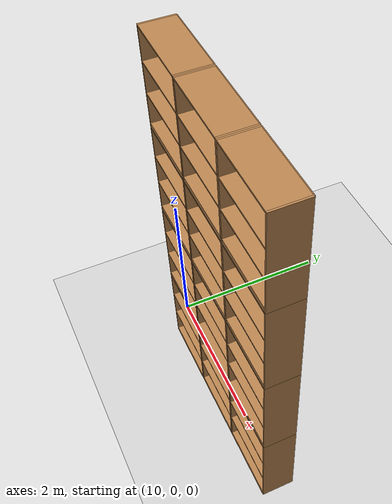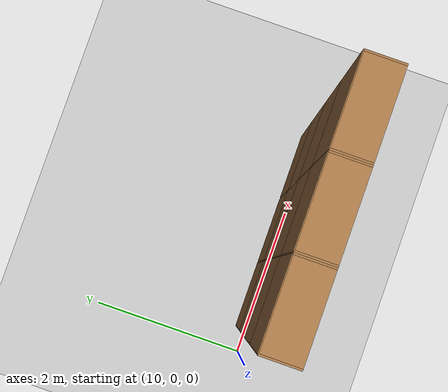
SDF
<sdf version="1.6">
 <world name="default">
  <model name="ground_plane">
   <static>1</static>
   <link name="link">
    <collision name="collision">
     <geometry><plane><normal>0 0 1</normal><size>100 100</size></plane></geometry>
     <surface>
      <contact><collide_bitmask>65535</collide_bitmask></contact>
      <friction><ode><mu>100</mu><mu2>50</mu2></ode></friction>
     </surface>
    </collision>
    <visual name="visual">
     <cast_shadows>0</cast_shadows>
     <geometry><plane><normal>0 0 1</normal><size>100 100</size></plane></geometry>
     <material>
      <script><uri>file://media/materials/scripts/gazebo.material</uri><name>Gazebo/Grey</name></script>
     </material>
    </visual>
   </link>
  </model>
  <model name="shelf2.0_clone_0_clone_clone_0">
   <model name="shelf1.0">
    <model name="bookshelf">
     <static>1</static>
     <link name="link">
      <inertial><mass>1</mass></inertial>
      <collision name="back">
       <pose>0 0.005 0.6 0 -0 0</pose>
       <geometry><box><size>0.9 0.01 1.2</size></box></geometry>
      </collision>
      <visual name="visual1">
       <pose>0 0.005 0.6 0 -0 0</pose>
       <geometry><box><size>0.9 0.01 1.2</size></box></geometry>
       <material>
        <script><uri>file://media/materials/scripts/gazebo.material</uri><name>Gazebo/Wood</name></script>
       </material>
      </visual>
      <collision name="left_side">
       <pose>0.45 -0.195 0.6 0 -0 0</pose>
       <geometry><box><size>0.02 0.4 1.2</size></box></geometry>
      </collision>
      <visual name="visual2">
       <pose>0.45 -0.195 0.6 0 -0 0</pose>
       <geometry><box><size>0.02 0.4 1.2</size></box></geometry>
       <material>
        <script><uri>file://media/materials/scripts/gazebo.material</uri><name>Gazebo/Wood</name></script>
       </material>
      </visual>
      <collision name="right_side">
       <pose>-0.45 -0.195 0.6 0 -0 0</pose>
       <geometry><box><size>0.02 0.4 1.2</size></box></geometry>
      </collision>
      <visual name="visual3">
       <pose>-0.45 -0.195 0.6 0 -0 0</pose>
       <geometry><box><size>0.02 0.4 1.2</size></box></geometry>
       <material>
        <script><uri>file://media/materials/scripts/gazebo.material</uri><name>Gazebo/Wood</name></script>
       </material>
      </visual>
      <collision name="bottom">
       <pose>0 -0.195 0.03 0 -0 0</pose>
       <geometry><box><size>0.88 0.4 0.06</size></box></geometry>
      </collision>
      <visual name="visual4">
       <pose>0 -0.195 0.03 0 -0 0</pose>
       <geometry><box><size>0.88 0.4 0.06</size></box></geometry>
       <material>
        <script><uri>file://media/materials/scripts/gazebo.material</uri><name>Gazebo/Wood</name></script>
       </material>
      </visual>
      <collision name="top">
       <pose>0 -0.195 1.19 0 -0 0</pose>
       <geometry><box><size>0.88 0.4 0.02</size></box></geometry>
      </collision>
      <visual name="visual5">
       <pose>0 -0.195 1.19 0 -0 0</pose>
       <geometry><box><size>0.88 0.4 0.02</size></box></geometry>
       <material>
        <script><uri>file://media/materials/scripts/gazebo.material</uri><name>Gazebo/Wood</name></script>
       </material>
      </visual>
      <collision name="low_shelf">
       <pose>0 -0.195 0.43 0 -0 0</pose>
       <geometry><box><size>0.88 0.4 0.02</size></box></geometry>
      </collision>
      <visual name="visual6">
       <pose>0 -0.195 0.43 0 -0 0</pose>
       <geometry><box><size>0.88 0.4 0.02</size></box></geometry>
       <material>
        <script><uri>file://media/materials/scripts/gazebo.material</uri><name>Gazebo/Wood</name></script>
       </material>
      </visual>
      <collision name="high_shelf">
       <pose>0 -0.195 0.8 0 -0 0</pose>
       <geometry><box><size>0.88 0.4 0.02</size></box></geometry>
      </collision>
      <visual name="visual7">
       <pose>0 -0.195 0.8 0 -0 0</pose>
       <geometry><box><size>0.88 0.4 0.02</size></box></geometry>
       <material>
        <script><uri>file://media/materials/scripts/gazebo.material</uri><name>Gazebo/Wood</name></script>
       </material>
      </visual>
     </link>
     <pose>1e-06 0 -1.8 0 -0 0</pose>
    </model>
    <model name="bookshelf_clone">
     <static>1</static>
     <link name="link">
      <inertial><mass>1</mass></inertial>
      <collision name="back">
       <pose>0 0.005 0.6 0 -0 0</pose>
       <geometry><box><size>0.9 0.01 1.2</size></box></geometry>
      </collision>
      <visual name="visual1">
       <pose>0 0.005 0.6 0 -0 0</pose>
       <geometry><box><size>0.9 0.01 1.2</size></box></geometry>
       <material>
        <script><uri>file://media/materials/scripts/gazebo.material</uri><name>Gazebo/Wood</name></script>
       </material>
      </visual>
      <collision name="left_side">
       <pose>0.45 -0.195 0.6 0 -0 0</pose>
       <geometry><box><size>0.02 0.4 1.2</size></box></geometry>
      </collision>
      <visual name="visual2">
       <pose>0.45 -0.195 0.6 0 -0 0</pose>
       <geometry><box><size>0.02 0.4 1.2</size></box></geometry>
       <material>
        <script><uri>file://media/materials/scripts/gazebo.material</uri><name>Gazebo/Wood</name></script>
       </material>
      </visual>
      <collision name="right_side">
       <pose>-0.45 -0.195 0.6 0 -0 0</pose>
       <geometry><box><size>0.02 0.4 1.2</size></box></geometry>
      </collision>
      <visual name="visual3">
       <pose>-0.45 -0.195 0.6 0 -0 0</pose>
       <geometry><box><size>0.02 0.4 1.2</size></box></geometry>
       <material>
        <script><uri>file://media/materials/scripts/gazebo.material</uri><name>Gazebo/Wood</name></script>
       </material>
      </visual>
      <collision name="bottom">
       <pose>0 -0.195 0.03 0 -0 0</pose>
       <geometry><box><size>0.88 0.4 0.06</size></box></geometry>
      </collision>
      <visual name="visual4">
       <pose>0 -0.195 0.03 0 -0 0</pose>
       <geometry><box><size>0.88 0.4 0.06</size></box></geometry>
       <material>
        <script><uri>file://media/materials/scripts/gazebo.material</uri><name>Gazebo/Wood</name></script>
       </material>
      </visual>
      <collision name="top">
       <pose>0 -0.195 1.19 0 -0 0</pose>
       <geometry><box><size>0.88 0.4 0.02</size></box></geometry>
      </collision>
      <visual name="visual5">
       <pose>0 -0.195 1.19 0 -0 0</pose>
       <geometry><box><size>0.88 0.4 0.02</size></box></geometry>
       <material>
        <script><uri>file://media/materials/scripts/gazebo.material</uri><name>Gazebo/Wood</name></script>
       </material>
      </visual>
      <collision name="low_shelf">
       <pose>0 -0.195 0.43 0 -0 0</pose>
       <geometry><box><size>0.88 0.4 0.02</size></box></geometry>
      </collision>
      <visual name="visual6">
       <pose>0 -0.195 0.43 0 -0 0</pose>
       <geometry><box><size>0.88 0.4 0.02</size></box></geometry>
       <material>
        <script><uri>file://media/materials/scripts/gazebo.material</uri><name>Gazebo/Wood</name></script>
       </material>
      </visual>
      <collision name="high_shelf">
       <pose>0 -0.195 0.8 0 -0 0</pose>
       <geometry><box><size>0.88 0.4 0.02</size></box></geometry>
      </collision>
      <visual name="visual7">
       <pose>0 -0.195 0.8 0 -0 0</pose>
       <geometry><box><size>0.88 0.4 0.02</size></box></geometry>
       <material>
        <script><uri>file://media/materials/scripts/gazebo.material</uri><name>Gazebo/Wood</name></script>
       </material>
      </visual>
     </link>
     <pose>1e-06 0 -0.600002 0 -0 0</pose>
    </model>
    <model name="bookshelf_clone_0">
     <static>1</static>
     <link name="link">
      <inertial><mass>1</mass></inertial>
      <collision name="back">
       <pose>0 0.005 0.6 0 -0 0</pose>
       <geometry><box><size>0.9 0.01 1.2</size></box></geometry>
      </collision>
      <visual name="visual1">
       <pose>0 0.005 0.6 0 -0 0</pose>
       <geometry><box><size>0.9 0.01 1.2</size></box></geometry>
       <material>
        <script><uri>file://media/materials/scripts/gazebo.material</uri><name>Gazebo/Wood</name></script>
       </material>
      </visual>
      <collision name="left_side">
       <pose>0.45 -0.195 0.6 0 -0 0</pose>
       <geometry><box><size>0.02 0.4 1.2</size></box></geometry>
      </collision>
      <visual name="visual2">
       <pose>0.45 -0.195 0.6 0 -0 0</pose>
       <geometry><box><size>0.02 0.4 1.2</size></box></geometry>
       <material>
        <script><uri>file://media/materials/scripts/gazebo.material</uri><name>Gazebo/Wood</name></script>
       </material>
      </visual>
      <collision name="right_side">
       <pose>-0.45 -0.195 0.6 0 -0 0</pose>
       <geometry><box><size>0.02 0.4 1.2</size></box></geometry>
      </collision>
      <visual name="visual3">
       <pose>-0.45 -0.195 0.6 0 -0 0</pose>
       <geometry><box><size>0.02 0.4 1.2</size></box></geometry>
       <material>
        <script><uri>file://media/materials/scripts/gazebo.material</uri><name>Gazebo/Wood</name></script>
       </material>
      </visual>
      <collision name="bottom">
       <pose>0 -0.195 0.03 0 -0 0</pose>
       <geometry><box><size>0.88 0.4 0.06</size></box></geometry>
      </collision>
      <visual name="visual4">
       <pose>0 -0.195 0.03 0 -0 0</pose>
       <geometry><box><size>0.88 0.4 0.06</size></box></geometry>
       <material>
        <script><uri>file://media/materials/scripts/gazebo.material</uri><name>Gazebo/Wood</name></script>
       </material>
      </visual>
      <collision name="top">
       <pose>0 -0.195 1.19 0 -0 0</pose>
       <geometry><box><size>0.88 0.4 0.02</size></box></geometry>
      </collision>
      <visual name="visual5">
       <pose>0 -0.195 1.19 0 -0 0</pose>
       <geometry><box><size>0.88 0.4 0.02</size></box></geometry>
       <material>
        <script><uri>file://media/materials/scripts/gazebo.material</uri><name>Gazebo/Wood</name></script>
       </material>
      </visual>
      <collision name="low_shelf">
       <pose>0 -0.195 0.43 0 -0 0</pose>
       <geometry><box><size>0.88 0.4 0.02</size></box></geometry>
      </collision>
      <visual name="visual6">
       <pose>0 -0.195 0.43 0 -0 0</pose>
       <geometry><box><size>0.88 0.4 0.02</size></box></geometry>
       <material>
        <script><uri>file://media/materials/scripts/gazebo.material</uri><name>Gazebo/Wood</name></script>
       </material>
      </visual>
      <collision name="high_shelf">
       <pose>0 -0.195 0.8 0 -0 0</pose>
       <geometry><box><size>0.88 0.4 0.02</size></box></geometry>
      </collision>
      <visual name="visual7">
       <pose>0 -0.195 0.8 0 -0 0</pose>
       <geometry><box><size>0.88 0.4 0.02</size></box></geometry>
       <material>
        <script><uri>file://media/materials/scripts/gazebo.material</uri><name>Gazebo/Wood</name></script>
       </material>
      </visual>
     </link>
     <pose>1e-06 0 0.599998 0 -0 0</pose>
    </model>
    <model name="bookshelf_clone_0_clone">
     <static>1</static>
     <link name="link">
      <inertial><mass>1</mass></inertial>
      <collision name="back">
       <pose>0 0.005 0.6 0 -0 0</pose>
       <geometry><box><size>0.9 0.01 1.2</size></box></geometry>
      </collision>
      <visual name="visual1">
       <pose>0 0.005 0.6 0 -0 0</pose>
       <geometry><box><size>0.9 0.01 1.2</size></box></geometry>
       <material>
        <script><uri>file://media/materials/scripts/gazebo.material</uri><name>Gazebo/Wood</name></script>
       </material>
      </visual>
      <collision name="left_side">
       <pose>0.45 -0.195 0.6 0 -0 0</pose>
       <geometry><box><size>0.02 0.4 1.2</size></box></geometry>
      </collision>
      <visual name="visual2">
       <pose>0.45 -0.195 0.6 0 -0 0</pose>
       <geometry><box><size>0.02 0.4 1.2</size></box></geometry>
       <material>
        <script><uri>file://media/materials/scripts/gazebo.material</uri><name>Gazebo/Wood</name></script>
       </material>
      </visual>
      <collision name="right_side">
       <pose>-0.45 -0.195 0.6 0 -0 0</pose>
       <geometry><box><size>0.02 0.4 1.2</size></box></geometry>
      </collision>
      <visual name="visual3">
       <pose>-0.45 -0.195 0.6 0 -0 0</pose>
       <geometry><box><size>0.02 0.4 1.2</size></box></geometry>
       <material>
        <script><uri>file://media/materials/scripts/gazebo.material</uri><name>Gazebo/Wood</name></script>
       </material>
      </visual>
      <collision name="bottom">
       <pose>0 -0.195 0.03 0 -0 0</pose>
       <geometry><box><size>0.88 0.4 0.06</size></box></geometry>
      </collision>
      <visual name="visual4">
       <pose>0 -0.195 0.03 0 -0 0</pose>
       <geometry><box><size>0.88 0.4 0.06</size></box></geometry>
       <material>
        <script><uri>file://media/materials/scripts/gazebo.material</uri><name>Gazebo/Wood</name></script>
       </material>
      </visual>
      <collision name="top">
       <pose>0 -0.195 1.19 0 -0 0</pose>
       <geometry><box><size>0.88 0.4 0.02</size></box></geometry>
      </collision>
      <visual name="visual5">
       <pose>0 -0.195 1.19 0 -0 0</pose>
       <geometry><box><size>0.88 0.4 0.02</size></box></geometry>
       <material>
        <script><uri>file://media/materials/scripts/gazebo.material</uri><name>Gazebo/Wood</name></script>
       </material>
      </visual>
      <collision name="low_shelf">
       <pose>0 -0.195 0.43 0 -0 0</pose>
       <geometry><box><size>0.88 0.4 0.02</size></box></geometry>
      </collision>
      <visual name="visual6">
       <pose>0 -0.195 0.43 0 -0 0</pose>
       <geometry><box><size>0.88 0.4 0.02</size></box></geometry>
       <material>
        <script><uri>file://media/materials/scripts/gazebo.material</uri><name>Gazebo/Wood</name></script>
       </material>
      </visual>
      <collision name="high_shelf">
       <pose>0 -0.195 0.8 0 -0 0</pose>
       <geometry><box><size>0.88 0.4 0.02</size></box></geometry>
      </collision>
      <visual name="visual7">
       <pose>0 -0.195 0.8 0 -0 0</pose>
       <geometry><box><size>0.88 0.4 0.02</size></box></geometry>
       <material>
        <script><uri>file://media/materials/scripts/gazebo.material</uri><name>Gazebo/Wood</name></script>
       </material>
      </visual>
     </link>
     <pose>1e-06 0 1.8 0 -0 0</pose>
    </model>
    <joint name="link_JOINT_3" type="fixed">
     <parent>bookshelf::link</parent>
     <child>bookshelf_clone::link</child>
     <physics>
      <ode><limit><cfm>0</cfm><erp>0.2</erp></limit><suspension><cfm>0</cfm><erp>0.2</erp></suspension></ode>
     </physics>
    </joint>
    <joint name="link_JOINT_4" type="fixed">
     <parent>bookshelf::link</parent>
     <child>bookshelf_clone_0::link</child>
     <physics>
      <ode><limit><cfm>0</cfm><erp>0.2</erp></limit><suspension><cfm>0</cfm><erp>0.2</erp></suspension></ode>
     </physics>
    </joint>
    <joint name="link_JOINT_5" type="fixed">
     <parent>bookshelf::link</parent>
     <child>bookshelf_clone_0_clone::link</child>
     <physics>
      <ode><limit><cfm>0</cfm><erp>0.2</erp></limit><suspension><cfm>0</cfm><erp>0.2</erp></suspension></ode>
     </physics>
    </joint>
    <static>0</static>
    <pose>-0.920027 0 0 0 -0 0</pose>
   </model>
   <model name="shelf1.0_clone">
    <model name="bookshelf">
     <static>1</static>
     <link name="link">
      <inertial><mass>1</mass></inertial>
      <collision name="back">
       <pose>0 0.005 0.6 0 -0 0</pose>
       <geometry><box><size>0.9 0.01 1.2</size></box></geometry>
      </collision>
      <visual name="visual1">
       <pose>0 0.005 0.6 0 -0 0</pose>
       <geometry><box><size>0.9 0.01 1.2</size></box></geometry>
       <material>
        <script><uri>file://media/materials/scripts/gazebo.material</uri><name>Gazebo/Wood</name></script>
       </material>
      </visual>
      <collision name="left_side">
       <pose>0.45 -0.195 0.6 0 -0 0</pose>
       <geometry><box><size>0.02 0.4 1.2</size></box></geometry>
      </collision>
      <visual name="visual2">
       <pose>0.45 -0.195 0.6 0 -0 0</pose>
       <geometry><box><size>0.02 0.4 1.2</size></box></geometry>
       <material>
        <script><uri>file://media/materials/scripts/gazebo.material</uri><name>Gazebo/Wood</name></script>
       </material>
      </visual>
      <collision name="right_side">
       <pose>-0.45 -0.195 0.6 0 -0 0</pose>
       <geometry><box><size>0.02 0.4 1.2</size></box></geometry>
      </collision>
      <visual name="visual3">
       <pose>-0.45 -0.195 0.6 0 -0 0</pose>
       <geometry><box><size>0.02 0.4 1.2</size></box></geometry>
       <material>
        <script><uri>file://media/materials/scripts/gazebo.material</uri><name>Gazebo/Wood</name></script>
       </material>
      </visual>
      <collision name="bottom">
       <pose>0 -0.195 0.03 0 -0 0</pose>
       <geometry><box><size>0.88 0.4 0.06</size></box></geometry>
      </collision>
      <visual name="visual4">
       <pose>0 -0.195 0.03 0 -0 0</pose>
       <geometry><box><size>0.88 0.4 0.06</size></box></geometry>
       <material>
        <script><uri>file://media/materials/scripts/gazebo.material</uri><name>Gazebo/Wood</name></script>
       </material>
      </visual>
      <collision name="top">
       <pose>0 -0.195 1.19 0 -0 0</pose>
       <geometry><box><size>0.88 0.4 0.02</size></box></geometry>
      </collision>
      <visual name="visual5">
       <pose>0 -0.195 1.19 0 -0 0</pose>
       <geometry><box><size>0.88 0.4 0.02</size></box></geometry>
       <material>
        <script><uri>file://media/materials/scripts/gazebo.material</uri><name>Gazebo/Wood</name></script>
       </material>
      </visual>
      <collision name="low_shelf">
       <pose>0 -0.195 0.43 0 -0 0</pose>
       <geometry><box><size>0.88 0.4 0.02</size></box></geometry>
      </collision>
      <visual name="visual6">
       <pose>0 -0.195 0.43 0 -0 0</pose>
       <geometry><box><size>0.88 0.4 0.02</size></box></geometry>
       <material>
        <script><uri>file://media/materials/scripts/gazebo.material</uri><name>Gazebo/Wood</name></script>
       </material>
      </visual>
      <collision name="high_shelf">
       <pose>0 -0.195 0.8 0 -0 0</pose>
       <geometry><box><size>0.88 0.4 0.02</size></box></geometry>
      </collision>
      <visual name="visual7">
       <pose>0 -0.195 0.8 0 -0 0</pose>
       <geometry><box><size>0.88 0.4 0.02</size></box></geometry>
       <material>
        <script><uri>file://media/materials/scripts/gazebo.material</uri><name>Gazebo/Wood</name></script>
       </material>
      </visual>
     </link>
     <pose>1e-06 0 -1.8 0 -0 0</pose>
    </model>
    <model name="bookshelf_clone">
     <static>1</static>
     <link name="link">
      <inertial><mass>1</mass></inertial>
      <collision name="back">
       <pose>0 0.005 0.6 0 -0 0</pose>
       <geometry><box><size>0.9 0.01 1.2</size></box></geometry>
      </collision>
      <visual name="visual1">
       <pose>0 0.005 0.6 0 -0 0</pose>
       <geometry><box><size>0.9 0.01 1.2</size></box></geometry>
       <material>
        <script><uri>file://media/materials/scripts/gazebo.material</uri><name>Gazebo/Wood</name></script>
       </material>
      </visual>
      <collision name="left_side">
       <pose>0.45 -0.195 0.6 0 -0 0</pose>
       <geometry><box><size>0.02 0.4 1.2</size></box></geometry>
      </collision>
      <visual name="visual2">
       <pose>0.45 -0.195 0.6 0 -0 0</pose>
       <geometry><box><size>0.02 0.4 1.2</size></box></geometry>
       <material>
        <script><uri>file://media/materials/scripts/gazebo.material</uri><name>Gazebo/Wood</name></script>
       </material>
      </visual>
      <collision name="right_side">
       <pose>-0.45 -0.195 0.6 0 -0 0</pose>
       <geometry><box><size>0.02 0.4 1.2</size></box></geometry>
      </collision>
      <visual name="visual3">
       <pose>-0.45 -0.195 0.6 0 -0 0</pose>
       <geometry><box><size>0.02 0.4 1.2</size></box></geometry>
       <material>
        <script><uri>file://media/materials/scripts/gazebo.material</uri><name>Gazebo/Wood</name></script>
       </material>
      </visual>
      <collision name="bottom">
       <pose>0 -0.195 0.03 0 -0 0</pose>
       <geometry><box><size>0.88 0.4 0.06</size></box></geometry>
      </collision>
      <visual name="visual4">
       <pose>0 -0.195 0.03 0 -0 0</pose>
       <geometry><box><size>0.88 0.4 0.06</size></box></geometry>
       <material>
        <script><uri>file://media/materials/scripts/gazebo.material</uri><name>Gazebo/Wood</name></script>
       </material>
      </visual>
      <collision name="top">
       <pose>0 -0.195 1.19 0 -0 0</pose>
       <geometry><box><size>0.88 0.4 0.02</size></box></geometry>
      </collision>
      <visual name="visual5">
       <pose>0 -0.195 1.19 0 -0 0</pose>
       <geometry><box><size>0.88 0.4 0.02</size></box></geometry>
       <material>
        <script><uri>file://media/materials/scripts/gazebo.material</uri><name>Gazebo/Wood</name></script>
       </material>
      </visual>
      <collision name="low_shelf">
       <pose>0 -0.195 0.43 0 -0 0</pose>
       <geometry><box><size>0.88 0.4 0.02</size></box></geometry>
      </collision>
      <visual name="visual6">
       <pose>0 -0.195 0.43 0 -0 0</pose>
       <geometry><box><size>0.88 0.4 0.02</size></box></geometry>
       <material>
        <script><uri>file://media/materials/scripts/gazebo.material</uri><name>Gazebo/Wood</name></script>
       </material>
      </visual>
      <collision name="high_shelf">
       <pose>0 -0.195 0.8 0 -0 0</pose>
       <geometry><box><size>0.88 0.4 0.02</size></box></geometry>
      </collision>
      <visual name="visual7">
       <pose>0 -0.195 0.8 0 -0 0</pose>
       <geometry><box><size>0.88 0.4 0.02</size></box></geometry>
       <material>
        <script><uri>file://media/materials/scripts/gazebo.material</uri><name>Gazebo/Wood</name></script>
       </material>
      </visual>
     </link>
     <pose>1e-06 0 -0.600002 0 -0 0</pose>
    </model>
    <model name="bookshelf_clone_0">
     <static>1</static>
     <link name="link">
      <inertial><mass>1</mass></inertial>
      <collision name="back">
       <pose>0 0.005 0.6 0 -0 0</pose>
       <geometry><box><size>0.9 0.01 1.2</size></box></geometry>
      </collision>
      <visual name="visual1">
       <pose>0 0.005 0.6 0 -0 0</pose>
       <geometry><box><size>0.9 0.01 1.2</size></box></geometry>
       <material>
        <script><uri>file://media/materials/scripts/gazebo.material</uri><name>Gazebo/Wood</name></script>
       </material>
      </visual>
      <collision name="left_side">
       <pose>0.45 -0.195 0.6 0 -0 0</pose>
       <geometry><box><size>0.02 0.4 1.2</size></box></geometry>
      </collision>
      <visual name="visual2">
       <pose>0.45 -0.195 0.6 0 -0 0</pose>
       <geometry><box><size>0.02 0.4 1.2</size></box></geometry>
       <material>
        <script><uri>file://media/materials/scripts/gazebo.material</uri><name>Gazebo/Wood</name></script>
       </material>
      </visual>
      <collision name="right_side">
       <pose>-0.45 -0.195 0.6 0 -0 0</pose>
       <geometry><box><size>0.02 0.4 1.2</size></box></geometry>
      </collision>
      <visual name="visual3">
       <pose>-0.45 -0.195 0.6 0 -0 0</pose>
       <geometry><box><size>0.02 0.4 1.2</size></box></geometry>
       <material>
        <script><uri>file://media/materials/scripts/gazebo.material</uri><name>Gazebo/Wood</name></script>
       </material>
      </visual>
      <collision name="bottom">
       <pose>0 -0.195 0.03 0 -0 0</pose>
       <geometry><box><size>0.88 0.4 0.06</size></box></geometry>
      </collision>
      <visual name="visual4">
       <pose>0 -0.195 0.03 0 -0 0</pose>
       <geometry><box><size>0.88 0.4 0.06</size></box></geometry>
       <material>
        <script><uri>file://media/materials/scripts/gazebo.material</uri><name>Gazebo/Wood</name></script>
       </material>
      </visual>
      <collision name="top">
       <pose>0 -0.195 1.19 0 -0 0</pose>
       <geometry><box><size>0.88 0.4 0.02</size></box></geometry>
      </collision>
      <visual name="visual5">
       <pose>0 -0.195 1.19 0 -0 0</pose>
       <geometry><box><size>0.88 0.4 0.02</size></box></geometry>
       <material>
        <script><uri>file://media/materials/scripts/gazebo.material</uri><name>Gazebo/Wood</name></script>
       </material>
      </visual>
      <collision name="low_shelf">
       <pose>0 -0.195 0.43 0 -0 0</pose>
       <geometry><box><size>0.88 0.4 0.02</size></box></geometry>
      </collision>
      <visual name="visual6">
       <pose>0 -0.195 0.43 0 -0 0</pose>
       <geometry><box><size>0.88 0.4 0.02</size></box></geometry>
       <material>
        <script><uri>file://media/materials/scripts/gazebo.material</uri><name>Gazebo/Wood</name></script>
       </material>
      </visual>
      <collision name="high_shelf">
       <pose>0 -0.195 0.8 0 -0 0</pose>
       <geometry><box><size>0.88 0.4 0.02</size></box></geometry>
      </collision>
      <visual name="visual7">
       <pose>0 -0.195 0.8 0 -0 0</pose>
       <geometry><box><size>0.88 0.4 0.02</size></box></geometry>
       <material>
        <script><uri>file://media/materials/scripts/gazebo.material</uri><name>Gazebo/Wood</name></script>
       </material>
      </visual>
     </link>
     <pose>1e-06 0 0.599998 0 -0 0</pose>
    </model>
    <model name="bookshelf_clone_0_clone">
     <static>1</static>
     <link name="link">
      <inertial><mass>1</mass></inertial>
      <collision name="back">
       <pose>0 0.005 0.6 0 -0 0</pose>
       <geometry><box><size>0.9 0.01 1.2</size></box></geometry>
      </collision>
      <visual name="visual1">
       <pose>0 0.005 0.6 0 -0 0</pose>
       <geometry><box><size>0.9 0.01 1.2</size></box></geometry>
       <material>
        <script><uri>file://media/materials/scripts/gazebo.material</uri><name>Gazebo/Wood</name></script>
       </material>
      </visual>
      <collision name="left_side">
       <pose>0.45 -0.195 0.6 0 -0 0</pose>
       <geometry><box><size>0.02 0.4 1.2</size></box></geometry>
      </collision>
      <visual name="visual2">
       <pose>0.45 -0.195 0.6 0 -0 0</pose>
       <geometry><box><size>0.02 0.4 1.2</size></box></geometry>
       <material>
        <script><uri>file://media/materials/scripts/gazebo.material</uri><name>Gazebo/Wood</name></script>
       </material>
      </visual>
      <collision name="right_side">
       <pose>-0.45 -0.195 0.6 0 -0 0</pose>
       <geometry><box><size>0.02 0.4 1.2</size></box></geometry>
      </collision>
      <visual name="visual3">
       <pose>-0.45 -0.195 0.6 0 -0 0</pose>
       <geometry><box><size>0.02 0.4 1.2</size></box></geometry>
       <material>
        <script><uri>file://media/materials/scripts/gazebo.material</uri><name>Gazebo/Wood</name></script>
       </material>
      </visual>
      <collision name="bottom">
       <pose>0 -0.195 0.03 0 -0 0</pose>
       <geometry><box><size>0.88 0.4 0.06</size></box></geometry>
      </collision>
      <visual name="visual4">
       <pose>0 -0.195 0.03 0 -0 0</pose>
       <geometry><box><size>0.88 0.4 0.06</size></box></geometry>
       <material>
        <script><uri>file://media/materials/scripts/gazebo.material</uri><name>Gazebo/Wood</name></script>
       </material>
      </visual>
      <collision name="top">
       <pose>0 -0.195 1.19 0 -0 0</pose>
       <geometry><box><size>0.88 0.4 0.02</size></box></geometry>
      </collision>
      <visual name="visual5">
       <pose>0 -0.195 1.19 0 -0 0</pose>
       <geometry><box><size>0.88 0.4 0.02</size></box></geometry>
       <material>
        <script><uri>file://media/materials/scripts/gazebo.material</uri><name>Gazebo/Wood</name></script>
       </material>
      </visual>
      <collision name="low_shelf">
       <pose>0 -0.195 0.43 0 -0 0</pose>
       <geometry><box><size>0.88 0.4 0.02</size></box></geometry>
      </collision>
      <visual name="visual6">
       <pose>0 -0.195 0.43 0 -0 0</pose>
       <geometry><box><size>0.88 0.4 0.02</size></box></geometry>
       <material>
        <script><uri>file://media/materials/scripts/gazebo.material</uri><name>Gazebo/Wood</name></script>
       </material>
      </visual>
      <collision name="high_shelf">
       <pose>0 -0.195 0.8 0 -0 0</pose>
       <geometry><box><size>0.88 0.4 0.02</size></box></geometry>
      </collision>
      <visual name="visual7">
       <pose>0 -0.195 0.8 0 -0 0</pose>
       <geometry><box><size>0.88 0.4 0.02</size></box></geometry>
       <material>
        <script><uri>file://media/materials/scripts/gazebo.material</uri><name>Gazebo/Wood</name></script>
       </material>
      </visual>
     </link>
     <pose>1e-06 0 1.8 0 -0 0</pose>
    </model>
    <joint name="link_JOINT_3" type="fixed">
     <parent>bookshelf::link</parent>
     <child>bookshelf_clone::link</child>
     <physics>
      <ode><limit><cfm>0</cfm><erp>0.2</erp></limit><suspension><cfm>0</cfm><erp>0.2</erp></suspension></ode>
     </physics>
    </joint>
    <joint name="link_JOINT_4" type="fixed">
     <parent>bookshelf::link</parent>
     <child>bookshelf_clone_0::link</child>
     <physics>
      <ode><limit><cfm>0</cfm><erp>0.2</erp></limit><suspension><cfm>0</cfm><erp>0.2</erp></suspension></ode>
     </physics>
    </joint>
    <joint name="link_JOINT_5" type="fixed">
     <parent>bookshelf::link</parent>
     <child>bookshelf_clone_0_clone::link</child>
     <physics>
      <ode><limit><cfm>0</cfm><erp>0.2</erp></limit><suspension><cfm>0</cfm><erp>0.2</erp></suspension></ode>
     </physics>
    </joint>
    <static>0</static>
    <pose>-2.5e-05 0 0 0 -0 0</pose>
   </model>
   <model name="shelf1.0_clone_0">
    <model name="bookshelf">
     <static>1</static>
     <link name="link">
      <inertial><mass>1</mass></inertial>
      <collision name="back">
       <pose>0 0.005 0.6 0 -0 0</pose>
       <geometry><box><size>0.9 0.01 1.2</size></box></geometry>
      </collision>
      <visual name="visual1">
       <pose>0 0.005 0.6 0 -0 0</pose>
       <geometry><box><size>0.9 0.01 1.2</size></box></geometry>
       <material>
        <script><uri>file://media/materials/scripts/gazebo.material</uri><name>Gazebo/Wood</name></script>
       </material>
      </visual>
      <collision name="left_side">
       <pose>0.45 -0.195 0.6 0 -0 0</pose>
       <geometry><box><size>0.02 0.4 1.2</size></box></geometry>
      </collision>
      <visual name="visual2">
       <pose>0.45 -0.195 0.6 0 -0 0</pose>
       <geometry><box><size>0.02 0.4 1.2</size></box></geometry>
       <material>
        <script><uri>file://media/materials/scripts/gazebo.material</uri><name>Gazebo/Wood</name></script>
       </material>
      </visual>
      <collision name="right_side">
       <pose>-0.45 -0.195 0.6 0 -0 0</pose>
       <geometry><box><size>0.02 0.4 1.2</size></box></geometry>
      </collision>
      <visual name="visual3">
       <pose>-0.45 -0.195 0.6 0 -0 0</pose>
       <geometry><box><size>0.02 0.4 1.2</size></box></geometry>
       <material>
        <script><uri>file://media/materials/scripts/gazebo.material</uri><name>Gazebo/Wood</name></script>
       </material>
      </visual>
      <collision name="bottom">
       <pose>0 -0.195 0.03 0 -0 0</pose>
       <geometry><box><size>0.88 0.4 0.06</size></box></geometry>
      </collision>
      <visual name="visual4">
       <pose>0 -0.195 0.03 0 -0 0</pose>
       <geometry><box><size>0.88 0.4 0.06</size></box></geometry>
       <material>
        <script><uri>file://media/materials/scripts/gazebo.material</uri><name>Gazebo/Wood</name></script>
       </material>
      </visual>
      <collision name="top">
       <pose>0 -0.195 1.19 0 -0 0</pose>
       <geometry><box><size>0.88 0.4 0.02</size></box></geometry>
      </collision>
      <visual name="visual5">
       <pose>0 -0.195 1.19 0 -0 0</pose>
       <geometry><box><size>0.88 0.4 0.02</size></box></geometry>
       <material>
        <script><uri>file://media/materials/scripts/gazebo.material</uri><name>Gazebo/Wood</name></script>
       </material>
      </visual>
      <collision name="low_shelf">
       <pose>0 -0.195 0.43 0 -0 0</pose>
       <geometry><box><size>0.88 0.4 0.02</size></box></geometry>
      </collision>
      <visual name="visual6">
       <pose>0 -0.195 0.43 0 -0 0</pose>
       <geometry><box><size>0.88 0.4 0.02</size></box></geometry>
       <material>
        <script><uri>file://media/materials/scripts/gazebo.material</uri><name>Gazebo/Wood</name></script>
       </material>
      </visual>
      <collision name="high_shelf">
       <pose>0 -0.195 0.8 0 -0 0</pose>
       <geometry><box><size>0.88 0.4 0.02</size></box></geometry>
      </collision>
      <visual name="visual7">
       <pose>0 -0.195 0.8 0 -0 0</pose>
       <geometry><box><size>0.88 0.4 0.02</size></box></geometry>
       <material>
        <script><uri>file://media/materials/scripts/gazebo.material</uri><name>Gazebo/Wood</name></script>
       </material>
      </visual>
     </link>
     <pose>1e-06 0 -1.8 0 -0 0</pose>
    </model>
    <model name="bookshelf_clone">
     <static>1</static>
     <link name="link">
      <inertial><mass>1</mass></inertial>
      <collision name="back">
       <pose>0 0.005 0.6 0 -0 0</pose>
       <geometry><box><size>0.9 0.01 1.2</size></box></geometry>
      </collision>
      <visual name="visual1">
       <pose>0 0.005 0.6 0 -0 0</pose>
       <geometry><box><size>0.9 0.01 1.2</size></box></geometry>
       <material>
        <script><uri>file://media/materials/scripts/gazebo.material</uri><name>Gazebo/Wood</name></script>
       </material>
      </visual>
      <collision name="left_side">
       <pose>0.45 -0.195 0.6 0 -0 0</pose>
       <geometry><box><size>0.02 0.4 1.2</size></box></geometry>
      </collision>
      <visual name="visual2">
       <pose>0.45 -0.195 0.6 0 -0 0</pose>
       <geometry><box><size>0.02 0.4 1.2</size></box></geometry>
       <material>
        <script><uri>file://media/materials/scripts/gazebo.material</uri><name>Gazebo/Wood</name></script>
       </material>
      </visual>
      <collision name="right_side">
       <pose>-0.45 -0.195 0.6 0 -0 0</pose>
       <geometry><box><size>0.02 0.4 1.2</size></box></geometry>
      </collision>
      <visual name="visual3">
       <pose>-0.45 -0.195 0.6 0 -0 0</pose>
       <geometry><box><size>0.02 0.4 1.2</size></box></geometry>
       <material>
        <script><uri>file://media/materials/scripts/gazebo.material</uri><name>Gazebo/Wood</name></script>
       </material>
      </visual>
      <collision name="bottom">
       <pose>0 -0.195 0.03 0 -0 0</pose>
       <geometry><box><size>0.88 0.4 0.06</size></box></geometry>
      </collision>
      <visual name="visual4">
       <pose>0 -0.195 0.03 0 -0 0</pose>
       <geometry><box><size>0.88 0.4 0.06</size></box></geometry>
       <material>
        <script><uri>file://media/materials/scripts/gazebo.material</uri><name>Gazebo/Wood</name></script>
       </material>
      </visual>
      <collision name="top">
       <pose>0 -0.195 1.19 0 -0 0</pose>
       <geometry><box><size>0.88 0.4 0.02</size></box></geometry>
      </collision>
      <visual name="visual5">
       <pose>0 -0.195 1.19 0 -0 0</pose>
       <geometry><box><size>0.88 0.4 0.02</size></box></geometry>
       <material>
        <script><uri>file://media/materials/scripts/gazebo.material</uri><name>Gazebo/Wood</name></script>
       </material>
      </visual>
      <collision name="low_shelf">
       <pose>0 -0.195 0.43 0 -0 0</pose>
       <geometry><box><size>0.88 0.4 0.02</size></box></geometry>
      </collision>
      <visual name="visual6">
       <pose>0 -0.195 0.43 0 -0 0</pose>
       <geometry><box><size>0.88 0.4 0.02</size></box></geometry>
       <material>
        <script><uri>file://media/materials/scripts/gazebo.material</uri><name>Gazebo/Wood</name></script>
       </material>
      </visual>
      <collision name="high_shelf">
       <pose>0 -0.195 0.8 0 -0 0</pose>
       <geometry><box><size>0.88 0.4 0.02</size></box></geometry>
      </collision>
      <visual name="visual7">
       <pose>0 -0.195 0.8 0 -0 0</pose>
       <geometry><box><size>0.88 0.4 0.02</size></box></geometry>
       <material>
        <script><uri>file://media/materials/scripts/gazebo.material</uri><name>Gazebo/Wood</name></script>
       </material>
      </visual>
     </link>
     <pose>1e-06 0 -0.600002 0 -0 0</pose>
    </model>
    <model name="bookshelf_clone_0">
     <static>1</static>
     <link name="link">
      <inertial><mass>1</mass></inertial>
      <collision name="back">
       <pose>0 0.005 0.6 0 -0 0</pose>
       <geometry><box><size>0.9 0.01 1.2</size></box></geometry>
      </collision>
      <visual name="visual1">
       <pose>0 0.005 0.6 0 -0 0</pose>
       <geometry><box><size>0.9 0.01 1.2</size></box></geometry>
       <material>
        <script><uri>file://media/materials/scripts/gazebo.material</uri><name>Gazebo/Wood</name></script>
       </material>
      </visual>
      <collision name="left_side">
       <pose>0.45 -0.195 0.6 0 -0 0</pose>
       <geometry><box><size>0.02 0.4 1.2</size></box></geometry>
      </collision>
      <visual name="visual2">
       <pose>0.45 -0.195 0.6 0 -0 0</pose>
       <geometry><box><size>0.02 0.4 1.2</size></box></geometry>
       <material>
        <script><uri>file://media/materials/scripts/gazebo.material</uri><name>Gazebo/Wood</name></script>
       </material>
      </visual>
      <collision name="right_side">
       <pose>-0.45 -0.195 0.6 0 -0 0</pose>
       <geometry><box><size>0.02 0.4 1.2</size></box></geometry>
      </collision>
      <visual name="visual3">
       <pose>-0.45 -0.195 0.6 0 -0 0</pose>
       <geometry><box><size>0.02 0.4 1.2</size></box></geometry>
       <material>
        <script><uri>file://media/materials/scripts/gazebo.material</uri><name>Gazebo/Wood</name></script>
       </material>
      </visual>
      <collision name="bottom">
       <pose>0 -0.195 0.03 0 -0 0</pose>
       <geometry><box><size>0.88 0.4 0.06</size></box></geometry>
      </collision>
      <visual name="visual4">
       <pose>0 -0.195 0.03 0 -0 0</pose>
       <geometry><box><size>0.88 0.4 0.06</size></box></geometry>
       <material>
        <script><uri>file://media/materials/scripts/gazebo.material</uri><name>Gazebo/Wood</name></script>
       </material>
      </visual>
      <collision name="top">
       <pose>0 -0.195 1.19 0 -0 0</pose>
       <geometry><box><size>0.88 0.4 0.02</size></box></geometry>
      </collision>
      <visual name="visual5">
       <pose>0 -0.195 1.19 0 -0 0</pose>
       <geometry><box><size>0.88 0.4 0.02</size></box></geometry>
       <material>
        <script><uri>file://media/materials/scripts/gazebo.material</uri><name>Gazebo/Wood</name></script>
       </material>
      </visual>
      <collision name="low_shelf">
       <pose>0 -0.195 0.43 0 -0 0</pose>
       <geometry><box><size>0.88 0.4 0.02</size></box></geometry>
      </collision>
      <visual name="visual6">
       <pose>0 -0.195 0.43 0 -0 0</pose>
       <geometry><box><size>0.88 0.4 0.02</size></box></geometry>
       <material>
        <script><uri>file://media/materials/scripts/gazebo.material</uri><name>Gazebo/Wood</name></script>
       </material>
      </visual>
      <collision name="high_shelf">
       <pose>0 -0.195 0.8 0 -0 0</pose>
       <geometry><box><size>0.88 0.4 0.02</size></box></geometry>
      </collision>
      <visual name="visual7">
       <pose>0 -0.195 0.8 0 -0 0</pose>
       <geometry><box><size>0.88 0.4 0.02</size></box></geometry>
       <material>
        <script><uri>file://media/materials/scripts/gazebo.material</uri><name>Gazebo/Wood</name></script>
       </material>
      </visual>
     </link>
     <pose>1e-06 0 0.599998 0 -0 0</pose>
    </model>
    <model name="bookshelf_clone_0_clone">
     <static>1</static>
     <link name="link">
      <inertial><mass>1</mass></inertial>
      <collision name="back">
       <pose>0 0.005 0.6 0 -0 0</pose>
       <geometry><box><size>0.9 0.01 1.2</size></box></geometry>
      </collision>
      <visual name="visual1">
       <pose>0 0.005 0.6 0 -0 0</pose>
       <geometry><box><size>0.9 0.01 1.2</size></box></geometry>
       <material>
        <script><uri>file://media/materials/scripts/gazebo.material</uri><name>Gazebo/Wood</name></script>
       </material>
      </visual>
      <collision name="left_side">
       <pose>0.45 -0.195 0.6 0 -0 0</pose>
       <geometry><box><size>0.02 0.4 1.2</size></box></geometry>
      </collision>
      <visual name="visual2">
       <pose>0.45 -0.195 0.6 0 -0 0</pose>
       <geometry><box><size>0.02 0.4 1.2</size></box></geometry>
       <material>
        <script><uri>file://media/materials/scripts/gazebo.material</uri><name>Gazebo/Wood</name></script>
       </material>
      </visual>
      <collision name="right_side">
       <pose>-0.45 -0.195 0.6 0 -0 0</pose>
       <geometry><box><size>0.02 0.4 1.2</size></box></geometry>
      </collision>
      <visual name="visual3">
       <pose>-0.45 -0.195 0.6 0 -0 0</pose>
       <geometry><box><size>0.02 0.4 1.2</size></box></geometry>
       <material>
        <script><uri>file://media/materials/scripts/gazebo.material</uri><name>Gazebo/Wood</name></script>
       </material>
      </visual>
      <collision name="bottom">
       <pose>0 -0.195 0.03 0 -0 0</pose>
       <geometry><box><size>0.88 0.4 0.06</size></box></geometry>
      </collision>
      <visual name="visual4">
       <pose>0 -0.195 0.03 0 -0 0</pose>
       <geometry><box><size>0.88 0.4 0.06</size></box></geometry>
       <material>
        <script><uri>file://media/materials/scripts/gazebo.material</uri><name>Gazebo/Wood</name></script>
       </material>
      </visual>
      <collision name="top">
       <pose>0 -0.195 1.19 0 -0 0</pose>
       <geometry><box><size>0.88 0.4 0.02</size></box></geometry>
      </collision>
      <visual name="visual5">
       <pose>0 -0.195 1.19 0 -0 0</pose>
       <geometry><box><size>0.88 0.4 0.02</size></box></geometry>
       <material>
        <script><uri>file://media/materials/scripts/gazebo.material</uri><name>Gazebo/Wood</name></script>
       </material>
      </visual>
      <collision name="low_shelf">
       <pose>0 -0.195 0.43 0 -0 0</pose>
       <geometry><box><size>0.88 0.4 0.02</size></box></geometry>
      </collision>
      <visual name="visual6">
       <pose>0 -0.195 0.43 0 -0 0</pose>
       <geometry><box><size>0.88 0.4 0.02</size></box></geometry>
       <material>
        <script><uri>file://media/materials/scripts/gazebo.material</uri><name>Gazebo/Wood</name></script>
       </material>
      </visual>
      <collision name="high_shelf">
       <pose>0 -0.195 0.8 0 -0 0</pose>
       <geometry><box><size>0.88 0.4 0.02</size></box></geometry>
      </collision>
      <visual name="visual7">
       <pose>0 -0.195 0.8 0 -0 0</pose>
       <geometry><box><size>0.88 0.4 0.02</size></box></geometry>
       <material>
        <script><uri>file://media/materials/scripts/gazebo.material</uri><name>Gazebo/Wood</name></script>
       </material>
      </visual>
     </link>
     <pose>1e-06 0 1.8 0 -0 0</pose>
    </model>
    <joint name="link_JOINT_3" type="fixed">
     <parent>bookshelf::link</parent>
     <child>bookshelf_clone::link</child>
     <physics>
      <ode><limit><cfm>0</cfm><erp>0.2</erp></limit><suspension><cfm>0</cfm><erp>0.2</erp></suspension></ode>
     </physics>
    </joint>
    <joint name="link_JOINT_4" type="fixed">
     <parent>bookshelf::link</parent>
     <child>bookshelf_clone_0::link</child>
     <physics>
      <ode><limit><cfm>0</cfm><erp>0.2</erp></limit><suspension><cfm>0</cfm><erp>0.2</erp></suspension></ode>
     </physics>
    </joint>
    <joint name="link_JOINT_5" type="fixed">
     <parent>bookshelf::link</parent>
     <child>bookshelf_clone_0_clone::link</child>
     <physics>
      <ode><limit><cfm>0</cfm><erp>0.2</erp></limit><suspension><cfm>0</cfm><erp>0.2</erp></suspension></ode>
     </physics>
    </joint>
    <static>0</static>
    <pose>0.919977 0 0 0 -0 0</pose>
   </model>
   <joint name="link_JOINT_0" type="fixed">
    <parent>shelf1.0::bookshelf::link</parent>
    <child>shelf1.0_clone::bookshelf::link</child>
    <physics>
     <ode><limit><cfm>0</cfm><erp>0.2</erp></limit><suspension><cfm>0</cfm><erp>0.2</erp></suspension></ode>
    </physics>
   </joint>
   <joint name="link_JOINT_1" type="fixed">
    <parent>shelf1.0::bookshelf::link</parent>
    <child>shelf1.0_clone_0::bookshelf::link</child>
    <physics>
     <ode><limit><cfm>0</cfm><erp>0.2</erp></limit><suspension><cfm>0</cfm><erp>0.2</erp></suspension></ode>
    </physics>
   </joint>
   <static>0</static>
   <pose>11.7013 0.129295 1.80812 0 -0 0</pose>
  </model>
 </world>
</sdf>
